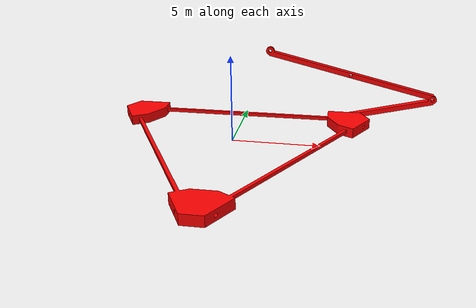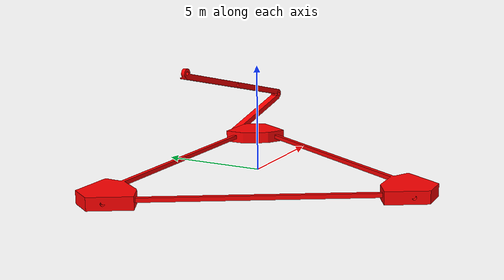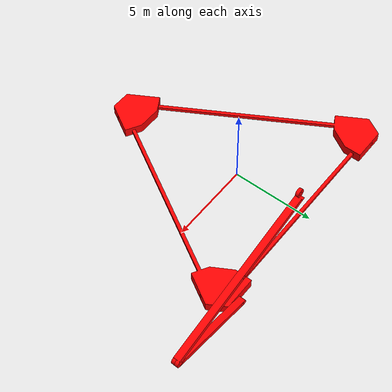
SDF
<?xml version='1.0' encoding='utf-8'?>
<sdf version="1.11">
	<model name="robot">
		<link name="link11">
			<pose degrees="true">6.55 5.079 2.7175999735764678 180 13.5 0</pose>
			<inertial auto="true">
				<density>1000</density>
			</inertial>
			<collision name="link11colli">
				<geometry>
					<mesh>
						<uri>file://home/cbb/gz_models/robot/cl1.STL</uri>
						<scale>0.1 0.1 0.1</scale>
					</mesh>
				</geometry>
			</collision>
			<visual name="link11visu">
				<geometry>
					<mesh>
						<uri>file://home/cbb/gz_models/robot/cl1.STL</uri>
						<scale>0.1 0.1 0.1</scale>
					</mesh>
				</geometry>
				<material>
					<ambient>1 0 0 1</ambient>
					<diffuse>1 0 0 1</diffuse>
					<specular>1 0 0 1</specular>
				</material>
			</visual>
		</link>

		<link name="link1_down">
			<pose degrees="true">6.55 5.079 0 0 166.5 0</pose>
			<inertial auto="true">
				<density>1000</density>
			</inertial>
			<collision name="link1_downcolli">
				<geometry>
					<mesh>
						<uri>file://home/cbb/gz_models/robot/chengg_down.STL</uri>
						<scale>0.1 0.1 0.1</scale>
					</mesh>
				</geometry>
			</collision>
			<visual name="link1_downvisu">
				<geometry>
					<mesh>
						<uri>file://home/cbb/gz_models/robot/chengg_down.STL</uri>
						<scale>0.1 0.1 0.1</scale>
					</mesh>
				</geometry>
				<material>
					<ambient>1 0 0 1</ambient>
					<diffuse>1 0 0 1</diffuse>
					<specular>1 0 0 1</specular>
				</material>
			</visual>
		</link>

		<link name="join0">
			<pose degrees="true">0 0 0.0 0 0 0</pose>
			<inertial auto="true">
				<density>1000</density>
			</inertial>
			<collision name="join0colli">
				<geometry>
					<mesh>
						<uri>file://home/cbb/gz_models/robot/jiaol_gan.STL</uri>
						<scale>0.1 0.1 0.1</scale>
					</mesh>
				</geometry>
			</collision>
			<visual name="join0visu">
				<geometry>
					<mesh>
						<uri>file://home/cbb/gz_models/robot/jiaol_gan.STL</uri>
						<scale>0.1 0.1 0.1</scale>
					</mesh>
				</geometry>
				<material>
					<ambient>1 0 0 1</ambient>
					<diffuse>1 0 0 1</diffuse>
					<specular>1 0 0 1</specular>
				</material>
			</visual>
		</link>

		<joint name="revjoin11" type="revolute">
			<pose relative_to="link1_down">0 0 0 0 0 0</pose>
			<parent>join0</parent>
			<child>link1_down</child>
			<axis>
				<xyz expressed_in="__model__">0 1 0</xyz>
			</axis>
		</joint>

		<frame name="nframe10" attached_to="link1_down">
			<pose relative_to="link1_down">-5.820633849156053 0 0 0 0 0</pose>
		</frame>
		<joint name="crevjoin10" type="revolute">
			<pose relative_to="link1_down">-5.820633849156053 0 0 0 0 0</pose>
			<parent>link11</parent>
			<child>link1_down</child>
			<axis>
				<xyz expressed_in="__model__">0 1 0</xyz>
			</axis>
		</joint>

	</model>
</sdf>
